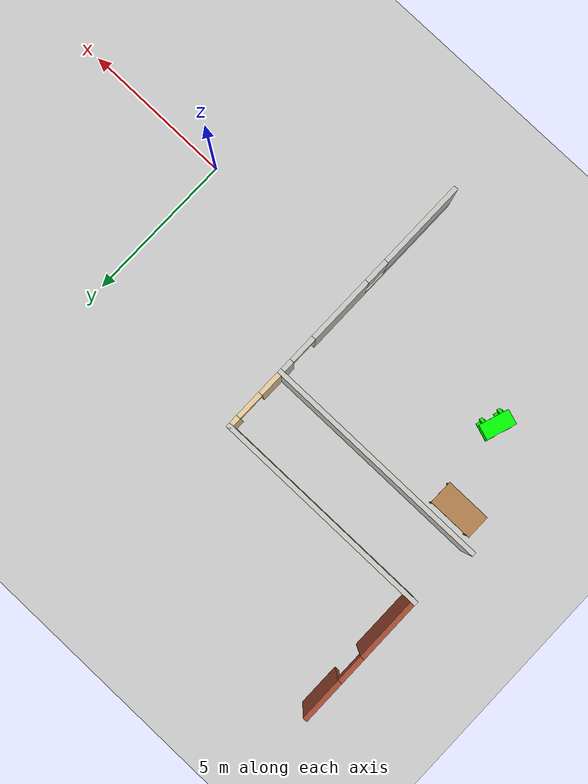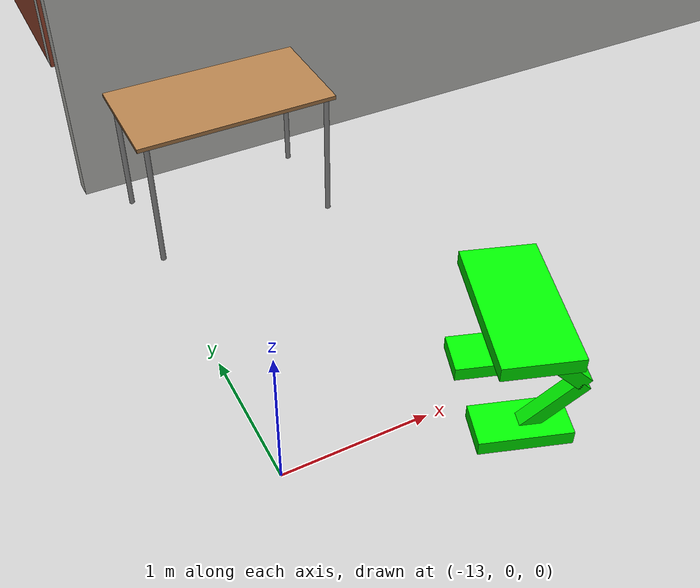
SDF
<sdf version="1.7">
 <world name="default">
  <model name="ground_plane">
   <static>1</static>
   <link name="link">
    <collision name="collision">
     <geometry><plane><normal>0 0 1</normal><size>100 100</size></plane></geometry>
     <surface>
      <contact><collide_bitmask>65535</collide_bitmask></contact>
      <friction><ode><mu>100</mu><mu2>50</mu2></ode></friction>
     </surface>
    </collision>
    <visual name="visual">
     <cast_shadows>0</cast_shadows>
     <geometry><plane><normal>0 0 1</normal><size>100 100</size></plane></geometry>
     <material>
      <script><uri>file://media/materials/scripts/gazebo.material</uri><name>Gazebo/Grey</name></script>
     </material>
    </visual>
   </link>
  </model>
  <model name="newworld">
   <link name="Wall_43">
    <pose>-9.72463 2.36822 0 0 -0 0</pose>
    <visual name="Wall_43_Visual">
     <pose>0 0 1.25 0 -0 0</pose>
     <geometry><box><size>7.5 0.15 2.5</size></box></geometry>
     <material>
      <script><uri>file://media/materials/scripts/gazebo.material</uri><name>Gazebo/CeilingTiled</name></script>
      <ambient>0.996078 0.47451 0.0196078 1</ambient>
      <shader type="pixel"/>
     </material>
     <meta><layer>0</layer></meta>
    </visual>
    <collision name="Wall_43_Collision">
     <pose>0 0 1.25 0 -0 0</pose>
     <geometry><box><size>7.5 0.15 2.5</size></box></geometry>
     <surface>
      <friction>
       <ode><mu>1</mu><mu2>1</mu2><fdir1>0 0 0</fdir1><slip1>0</slip1><slip2>0</slip2></ode>
       <torsional>
        <coefficient>1</coefficient>
        <patch_radius>0</patch_radius>
        <surface_radius>0</surface_radius>
        <use_patch_radius>1</use_patch_radius>
        <ode><slip>0</slip></ode>
       </torsional>
      </friction>
      <bounce><restitution_coefficient>0</restitution_coefficient><threshold>1e+06</threshold></bounce>
      <contact>
       <collide_without_contact>0</collide_without_contact>
       <collide_without_contact_bitmask>1</collide_without_contact_bitmask>
       <collide_bitmask>1</collide_bitmask>
       <ode>
        <soft_cfm>0</soft_cfm>
        <soft_erp>0.2</soft_erp>
        <kp>1e+13</kp>
        <kd>1</kd>
        <max_vel>0.01</max_vel>
        <min_depth>0</min_depth>
       </ode>
       <bullet>
        <split_impulse>1</split_impulse>
        <split_impulse_penetration_threshold>-0.01</split_impulse_penetration_threshold>
        <soft_cfm>0</soft_cfm>
        <soft_erp>0.2</soft_erp>
        <kp>1e+13</kp>
        <kd>1</kd>
       </bullet>
      </contact>
     </surface>
    </collision>
   </link>
   <link name="Wall_44">
    <pose>-6.04963 3.41822 0 0 -0 1.5708</pose>
    <visual name="Wall_44_Visual_0">
     <pose>-0.670296 0 1.25 0 -0 0</pose>
     <geometry><box><size>0.909407 0.15 2.5</size></box></geometry>
     <material>
      <script><uri>file://media/materials/scripts/gazebo.material</uri><name>Gazebo/Grey</name></script>
      <ambient>0.921569 0.807843 0.615686 1</ambient>
      <shader type="pixel"/>
     </material>
     <meta><layer>0</layer></meta>
    </visual>
    <visual name="Wall_44_Visual_1">
     <pose>0.904704 0 1.25 0 -0 0</pose>
     <geometry><box><size>0.440593 0.15 2.5</size></box></geometry>
     <material>
      <script><uri>file://media/materials/scripts/gazebo.material</uri><name>Gazebo/Grey</name></script>
      <ambient>0.921569 0.807843 0.615686 1</ambient>
      <shader type="pixel"/>
     </material>
     <meta><layer>0</layer></meta>
    </visual>
    <visual name="Wall_44_Visual_2">
     <pose>0.234407 0 2.25 0 -0 0</pose>
     <geometry><box><size>0.9 0.15 0.5</size></box></geometry>
     <material>
      <script><uri>file://media/materials/scripts/gazebo.material</uri><name>Gazebo/Grey</name></script>
      <ambient>0.921569 0.807843 0.615686 1</ambient>
      <shader type="pixel"/>
     </material>
     <meta><layer>0</layer></meta>
    </visual>
    <collision name="Wall_44_Collision_0">
     <pose>-0.670296 0 1.25 0 -0 0</pose>
     <geometry><box><size>0.909407 0.15 2.5</size></box></geometry>
     <surface>
      <friction>
       <ode><mu>1</mu><mu2>1</mu2><fdir1>0 0 0</fdir1><slip1>0</slip1><slip2>0</slip2></ode>
       <torsional>
        <coefficient>1</coefficient>
        <patch_radius>0</patch_radius>
        <surface_radius>0</surface_radius>
        <use_patch_radius>1</use_patch_radius>
        <ode><slip>0</slip></ode>
       </torsional>
      </friction>
      <bounce><restitution_coefficient>0</restitution_coefficient><threshold>1e+06</threshold></bounce>
      <contact>
       <collide_without_contact>0</collide_without_contact>
       <collide_without_contact_bitmask>1</collide_without_contact_bitmask>
       <collide_bitmask>1</collide_bitmask>
       <ode>
        <soft_cfm>0</soft_cfm>
        <soft_erp>0.2</soft_erp>
        <kp>1e+13</kp>
        <kd>1</kd>
        <max_vel>0.01</max_vel>
        <min_depth>0</min_depth>
       </ode>
       <bullet>
        <split_impulse>1</split_impulse>
        <split_impulse_penetration_threshold>-0.01</split_impulse_penetration_threshold>
        <soft_cfm>0</soft_cfm>
        <soft_erp>0.2</soft_erp>
        <kp>1e+13</kp>
        <kd>1</kd>
       </bullet>
      </contact>
     </surface>
    </collision>
    <collision name="Wall_44_Collision_2">
     <pose>0.234407 0 2.25 0 -0 0</pose>
     <geometry><box><size>0.9 0.15 0.5</size></box></geometry>
     <surface>
      <friction>
       <ode><mu>1</mu><mu2>1</mu2><fdir1>0 0 0</fdir1><slip1>0</slip1><slip2>0</slip2></ode>
       <torsional>
        <coefficient>1</coefficient>
        <patch_radius>0</patch_radius>
        <surface_radius>0</surface_radius>
        <use_patch_radius>1</use_patch_radius>
        <ode><slip>0</slip></ode>
       </torsional>
      </friction>
      <bounce><restitution_coefficient>0</restitution_coefficient><threshold>1e+06</threshold></bounce>
      <contact>
       <collide_without_contact>0</collide_without_contact>
       <collide_without_contact_bitmask>1</collide_without_contact_bitmask>
       <collide_bitmask>1</collide_bitmask>
       <ode>
        <soft_cfm>0</soft_cfm>
        <soft_erp>0.2</soft_erp>
        <kp>1e+13</kp>
        <kd>1</kd>
        <max_vel>0.01</max_vel>
        <min_depth>0</min_depth>
       </ode>
       <bullet>
        <split_impulse>1</split_impulse>
        <split_impulse_penetration_threshold>-0.01</split_impulse_penetration_threshold>
        <soft_cfm>0</soft_cfm>
        <soft_erp>0.2</soft_erp>
        <kp>1e+13</kp>
        <kd>1</kd>
       </bullet>
      </contact>
     </surface>
    </collision>
    <collision name="Wall_44_Collision_1">
     <pose>0.904704 0 1.25 0 -0 0</pose>
     <geometry><box><size>0.440593 0.15 2.5</size></box></geometry>
     <surface>
      <friction>
       <ode><mu>1</mu><mu2>1</mu2><fdir1>0 0 0</fdir1><slip1>0</slip1><slip2>0</slip2></ode>
       <torsional>
        <coefficient>1</coefficient>
        <patch_radius>0</patch_radius>
        <surface_radius>0</surface_radius>
        <use_patch_radius>1</use_patch_radius>
        <ode><slip>0</slip></ode>
       </torsional>
      </friction>
      <bounce><restitution_coefficient>0</restitution_coefficient><threshold>1e+06</threshold></bounce>
      <contact>
       <collide_without_contact>0</collide_without_contact>
       <collide_without_contact_bitmask>1</collide_without_contact_bitmask>
       <collide_bitmask>1</collide_bitmask>
       <ode>
        <soft_cfm>0</soft_cfm>
        <soft_erp>0.2</soft_erp>
        <kp>1e+13</kp>
        <kd>1</kd>
        <max_vel>0.01</max_vel>
        <min_depth>0</min_depth>
       </ode>
       <bullet>
        <split_impulse>1</split_impulse>
        <split_impulse_penetration_threshold>-0.01</split_impulse_penetration_threshold>
        <soft_cfm>0</soft_cfm>
        <soft_erp>0.2</soft_erp>
        <kp>1e+13</kp>
        <kd>1</kd>
       </bullet>
      </contact>
     </surface>
    </collision>
   </link>
   <link name="Wall_45">
    <pose>-9.59963 4.46822 0 0 -0 3.14159</pose>
    <visual name="Wall_45_Visual">
     <pose>0 0 1.25 0 -0 0</pose>
     <geometry><box><size>7.25 0.15 2.5</size></box></geometry>
     <material>
      <script><uri>file://media/materials/scripts/gazebo.material</uri><name>Gazebo/CeilingTiled</name></script>
      <ambient>0.921569 0.807843 0.615686 1</ambient>
      <shader type="pixel"/>
     </material>
     <meta><layer>0</layer></meta>
    </visual>
    <collision name="Wall_45_Collision">
     <pose>0 0 1.25 0 -0 0</pose>
     <geometry><box><size>7.25 0.15 2.5</size></box></geometry>
     <surface>
      <friction>
       <ode><mu>1</mu><mu2>1</mu2><fdir1>0 0 0</fdir1><slip1>0</slip1><slip2>0</slip2></ode>
       <torsional>
        <coefficient>1</coefficient>
        <patch_radius>0</patch_radius>
        <surface_radius>0</surface_radius>
        <use_patch_radius>1</use_patch_radius>
        <ode><slip>0</slip></ode>
       </torsional>
      </friction>
      <bounce><restitution_coefficient>0</restitution_coefficient><threshold>1e+06</threshold></bounce>
      <contact>
       <collide_without_contact>0</collide_without_contact>
       <collide_without_contact_bitmask>1</collide_without_contact_bitmask>
       <collide_bitmask>1</collide_bitmask>
       <ode>
        <soft_cfm>0</soft_cfm>
        <soft_erp>0.2</soft_erp>
        <kp>1e+13</kp>
        <kd>1</kd>
        <max_vel>0.01</max_vel>
        <min_depth>0</min_depth>
       </ode>
       <bullet>
        <split_impulse>1</split_impulse>
        <split_impulse_penetration_threshold>-0.01</split_impulse_penetration_threshold>
        <soft_cfm>0</soft_cfm>
        <soft_erp>0.2</soft_erp>
        <kp>1e+13</kp>
        <kd>1</kd>
       </bullet>
      </contact>
     </surface>
    </collision>
   </link>
   <link name="Wall_46">
    <pose>-13.1496 6.64322 0 0 -0 1.5708</pose>
    <visual name="Wall_46_Visual_1">
     <pose>1.54605 0 1.25 0 -0 0</pose>
     <geometry><box><size>1.4079 0.15 2.5</size></box></geometry>
     <material>
      <script><uri>file://media/materials/scripts/gazebo.material</uri><name>Gazebo/Bricks</name></script>
      <ambient>1 1 1 1</ambient>
      <shader type="pixel"/>
     </material>
     <meta><layer>0</layer></meta>
    </visual>
    <visual name="Wall_46_Visual_0">
     <pose>-1.15395 0 1.25 0 -0 0</pose>
     <geometry><box><size>2.1921 0.15 2.5</size></box></geometry>
     <material>
      <script><uri>file://media/materials/scripts/gazebo.material</uri><name>Gazebo/Bricks</name></script>
      <ambient>1 1 1 1</ambient>
      <shader type="pixel"/>
     </material>
     <meta><layer>0</layer></meta>
    </visual>
    <visual name="Wall_46_Visual_2">
     <pose>0.392097 0 2.25 0 -0 0</pose>
     <geometry><box><size>0.9 0.15 0.5</size></box></geometry>
     <material>
      <script><uri>file://media/materials/scripts/gazebo.material</uri><name>Gazebo/Bricks</name></script>
      <ambient>1 1 1 1</ambient>
      <shader type="pixel"/>
     </material>
     <meta><layer>0</layer></meta>
    </visual>
    <collision name="Wall_46_Collision_2">
     <pose>0.392097 0 2.25 0 -0 0</pose>
     <geometry><box><size>0.9 0.15 0.5</size></box></geometry>
     <surface>
      <friction>
       <ode><mu>1</mu><mu2>1</mu2><fdir1>0 0 0</fdir1><slip1>0</slip1><slip2>0</slip2></ode>
       <torsional>
        <coefficient>1</coefficient>
        <patch_radius>0</patch_radius>
        <surface_radius>0</surface_radius>
        <use_patch_radius>1</use_patch_radius>
        <ode><slip>0</slip></ode>
       </torsional>
      </friction>
      <bounce><restitution_coefficient>0</restitution_coefficient><threshold>1e+06</threshold></bounce>
      <contact>
       <collide_without_contact>0</collide_without_contact>
       <collide_without_contact_bitmask>1</collide_without_contact_bitmask>
       <collide_bitmask>1</collide_bitmask>
       <ode>
        <soft_cfm>0</soft_cfm>
        <soft_erp>0.2</soft_erp>
        <kp>1e+13</kp>
        <kd>1</kd>
        <max_vel>0.01</max_vel>
        <min_depth>0</min_depth>
       </ode>
       <bullet>
        <split_impulse>1</split_impulse>
        <split_impulse_penetration_threshold>-0.01</split_impulse_penetration_threshold>
        <soft_cfm>0</soft_cfm>
        <soft_erp>0.2</soft_erp>
        <kp>1e+13</kp>
        <kd>1</kd>
       </bullet>
      </contact>
     </surface>
    </collision>
    <collision name="Wall_46_Collision_0">
     <pose>-1.15395 0 1.25 0 -0 0</pose>
     <geometry><box><size>2.1921 0.15 2.5</size></box></geometry>
     <surface>
      <friction>
       <ode><mu>1</mu><mu2>1</mu2><fdir1>0 0 0</fdir1><slip1>0</slip1><slip2>0</slip2></ode>
       <torsional>
        <coefficient>1</coefficient>
        <patch_radius>0</patch_radius>
        <surface_radius>0</surface_radius>
        <use_patch_radius>1</use_patch_radius>
        <ode><slip>0</slip></ode>
       </torsional>
      </friction>
      <bounce><restitution_coefficient>0</restitution_coefficient><threshold>1e+06</threshold></bounce>
      <contact>
       <collide_without_contact>0</collide_without_contact>
       <collide_without_contact_bitmask>1</collide_without_contact_bitmask>
       <collide_bitmask>1</collide_bitmask>
       <ode>
        <soft_cfm>0</soft_cfm>
        <soft_erp>0.2</soft_erp>
        <kp>1e+13</kp>
        <kd>1</kd>
        <max_vel>0.01</max_vel>
        <min_depth>0</min_depth>
       </ode>
       <bullet>
        <split_impulse>1</split_impulse>
        <split_impulse_penetration_threshold>-0.01</split_impulse_penetration_threshold>
        <soft_cfm>0</soft_cfm>
        <soft_erp>0.2</soft_erp>
        <kp>1e+13</kp>
        <kd>1</kd>
       </bullet>
      </contact>
     </surface>
    </collision>
    <collision name="Wall_46_Collision_1">
     <pose>1.54605 0 1.25 0 -0 0</pose>
     <geometry><box><size>1.4079 0.15 2.5</size></box></geometry>
     <surface>
      <friction>
       <ode><mu>1</mu><mu2>1</mu2><fdir1>0 0 0</fdir1><slip1>0</slip1><slip2>0</slip2></ode>
       <torsional>
        <coefficient>1</coefficient>
        <patch_radius>0</patch_radius>
        <surface_radius>0</surface_radius>
        <use_patch_radius>1</use_patch_radius>
        <ode><slip>0</slip></ode>
       </torsional>
      </friction>
      <bounce><restitution_coefficient>0</restitution_coefficient><threshold>1e+06</threshold></bounce>
      <contact>
       <collide_without_contact>0</collide_without_contact>
       <collide_without_contact_bitmask>1</collide_without_contact_bitmask>
       <collide_bitmask>1</collide_bitmask>
       <ode>
        <soft_cfm>0</soft_cfm>
        <soft_erp>0.2</soft_erp>
        <kp>1e+13</kp>
        <kd>1</kd>
        <max_vel>0.01</max_vel>
        <min_depth>0</min_depth>
       </ode>
       <bullet>
        <split_impulse>1</split_impulse>
        <split_impulse_penetration_threshold>-0.01</split_impulse_penetration_threshold>
        <soft_cfm>0</soft_cfm>
        <soft_erp>0.2</soft_erp>
        <kp>1e+13</kp>
        <kd>1</kd>
       </bullet>
      </contact>
     </surface>
    </collision>
   </link>
   <link name="Wall_54">
    <pose>-6.04963 -1.22778 0 0 0 -1.5708</pose>
    <visual name="Wall_54_Visual_5">
     <pose>-2.69956 0 2.25 0 -0 0</pose>
     <geometry><box><size>0.9 0.15 0.5</size></box></geometry>
     <material>
      <script><uri>file://media/materials/scripts/gazebo.material</uri><name>Gazebo/CeilingTiled</name></script>
      <ambient>0.996078 0.47451 0.0196078 1</ambient>
      <shader type="pixel"/>
     </material>
     <meta><layer>0</layer></meta>
    </visual>
    <visual name="Wall_54_Visual_4">
     <pose>0.356693 0 1.9 0 -0 0</pose>
     <geometry><box><size>0.8 0.15 1.2</size></box></geometry>
     <material>
      <script><uri>file://media/materials/scripts/gazebo.material</uri><name>Gazebo/CeilingTiled</name></script>
      <ambient>0.996078 0.47451 0.0196078 1</ambient>
      <shader type="pixel"/>
     </material>
     <meta><layer>0</layer></meta>
    </visual>
    <visual name="Wall_54_Visual_0">
     <pose>-3.41028 0 1.25 0 -0 0</pose>
     <geometry><box><size>0.521445 0.15 2.5</size></box></geometry>
     <material>
      <script><uri>file://media/materials/scripts/gazebo.material</uri><name>Gazebo/CeilingTiled</name></script>
      <ambient>0.996078 0.47451 0.0196078 1</ambient>
      <shader type="pixel"/>
     </material>
     <meta><layer>0</layer></meta>
    </visual>
    <visual name="Wall_54_Visual_3">
     <pose>2.21385 0 1.5 0 -0 0</pose>
     <geometry><box><size>2.91431 0.15 2</size></box></geometry>
     <material>
      <script><uri>file://media/materials/scripts/gazebo.material</uri><name>Gazebo/CeilingTiled</name></script>
      <ambient>0.996078 0.47451 0.0196078 1</ambient>
      <shader type="pixel"/>
     </material>
     <meta><layer>0</layer></meta>
    </visual>
    <visual name="Wall_54_Visual_1">
     <pose>-1.14643 0 1.25 0 -0 0</pose>
     <geometry><box><size>2.20625 0.15 2.5</size></box></geometry>
     <material>
      <script><uri>file://media/materials/scripts/gazebo.material</uri><name>Gazebo/CeilingTiled</name></script>
      <ambient>0.996078 0.47451 0.0196078 1</ambient>
      <shader type="pixel"/>
     </material>
     <meta><layer>0</layer></meta>
    </visual>
    <visual name="Wall_54_Visual_2">
     <pose>1.81385 0 0.25 0 -0 0</pose>
     <geometry><box><size>3.71431 0.15 0.5</size></box></geometry>
     <material>
      <script><uri>file://media/materials/scripts/gazebo.material</uri><name>Gazebo/CeilingTiled</name></script>
      <ambient>0.996078 0.47451 0.0196078 1</ambient>
      <shader type="pixel"/>
     </material>
     <meta><layer>0</layer></meta>
    </visual>
    <collision name="Wall_54_Collision_3">
     <pose>2.21385 0 1.5 0 -0 0</pose>
     <geometry><box><size>2.91431 0.15 2</size></box></geometry>
     <surface>
      <friction>
       <ode><mu>1</mu><mu2>1</mu2><fdir1>0 0 0</fdir1><slip1>0</slip1><slip2>0</slip2></ode>
       <torsional>
        <coefficient>1</coefficient>
        <patch_radius>0</patch_radius>
        <surface_radius>0</surface_radius>
        <use_patch_radius>1</use_patch_radius>
        <ode><slip>0</slip></ode>
       </torsional>
      </friction>
      <bounce><restitution_coefficient>0</restitution_coefficient><threshold>1e+06</threshold></bounce>
      <contact>
       <collide_without_contact>0</collide_without_contact>
       <collide_without_contact_bitmask>1</collide_without_contact_bitmask>
       <collide_bitmask>1</collide_bitmask>
       <ode>
        <soft_cfm>0</soft_cfm>
        <soft_erp>0.2</soft_erp>
        <kp>1e+13</kp>
        <kd>1</kd>
        <max_vel>0.01</max_vel>
        <min_depth>0</min_depth>
       </ode>
       <bullet>
        <split_impulse>1</split_impulse>
        <split_impulse_penetration_threshold>-0.01</split_impulse_penetration_threshold>
        <soft_cfm>0</soft_cfm>
        <soft_erp>0.2</soft_erp>
        <kp>1e+13</kp>
        <kd>1</kd>
       </bullet>
      </contact>
     </surface>
    </collision>
    <collision name="Wall_54_Collision_5">
     <pose>-2.69956 0 2.25 0 -0 0</pose>
     <geometry><box><size>0.9 0.15 0.5</size></box></geometry>
     <surface>
      <friction>
       <ode><mu>1</mu><mu2>1</mu2><fdir1>0 0 0</fdir1><slip1>0</slip1><slip2>0</slip2></ode>
       <torsional>
        <coefficient>1</coefficient>
        <patch_radius>0</patch_radius>
        <surface_radius>0</surface_radius>
        <use_patch_radius>1</use_patch_radius>
        <ode><slip>0</slip></ode>
       </torsional>
      </friction>
      <bounce><restitution_coefficient>0</restitution_coefficient><threshold>1e+06</threshold></bounce>
      <contact>
       <collide_without_contact>0</collide_without_contact>
       <collide_without_contact_bitmask>1</collide_without_contact_bitmask>
       <collide_bitmask>1</collide_bitmask>
       <ode>
        <soft_cfm>0</soft_cfm>
        <soft_erp>0.2</soft_erp>
        <kp>1e+13</kp>
        <kd>1</kd>
        <max_vel>0.01</max_vel>
        <min_depth>0</min_depth>
       </ode>
       <bullet>
        <split_impulse>1</split_impulse>
        <split_impulse_penetration_threshold>-0.01</split_impulse_penetration_threshold>
        <soft_cfm>0</soft_cfm>
        <soft_erp>0.2</soft_erp>
        <kp>1e+13</kp>
        <kd>1</kd>
       </bullet>
      </contact>
     </surface>
    </collision>
    <collision name="Wall_54_Collision_2">
     <pose>1.81385 0 0.25 0 -0 0</pose>
     <geometry><box><size>3.71431 0.15 0.5</size></box></geometry>
     <surface>
      <friction>
       <ode><mu>1</mu><mu2>1</mu2><fdir1>0 0 0</fdir1><slip1>0</slip1><slip2>0</slip2></ode>
       <torsional>
        <coefficient>1</coefficient>
        <patch_radius>0</patch_radius>
        <surface_radius>0</surface_radius>
        <use_patch_radius>1</use_patch_radius>
        <ode><slip>0</slip></ode>
       </torsional>
      </friction>
      <bounce><restitution_coefficient>0</restitution_coefficient><threshold>1e+06</threshold></bounce>
      <contact>
       <collide_without_contact>0</collide_without_contact>
       <collide_without_contact_bitmask>1</collide_without_contact_bitmask>
       <collide_bitmask>1</collide_bitmask>
       <ode>
        <soft_cfm>0</soft_cfm>
        <soft_erp>0.2</soft_erp>
        <kp>1e+13</kp>
        <kd>1</kd>
        <max_vel>0.01</max_vel>
        <min_depth>0</min_depth>
       </ode>
       <bullet>
        <split_impulse>1</split_impulse>
        <split_impulse_penetration_threshold>-0.01</split_impulse_penetration_threshold>
        <soft_cfm>0</soft_cfm>
        <soft_erp>0.2</soft_erp>
        <kp>1e+13</kp>
        <kd>1</kd>
       </bullet>
      </contact>
     </surface>
    </collision>
    <collision name="Wall_54_Collision_4">
     <pose>0.356693 0 1.9 0 -0 0</pose>
     <geometry><box><size>0.8 0.15 1.2</size></box></geometry>
     <surface>
      <friction>
       <ode><mu>1</mu><mu2>1</mu2><fdir1>0 0 0</fdir1><slip1>0</slip1><slip2>0</slip2></ode>
       <torsional>
        <coefficient>1</coefficient>
        <patch_radius>0</patch_radius>
        <surface_radius>0</surface_radius>
        <use_patch_radius>1</use_patch_radius>
        <ode><slip>0</slip></ode>
       </torsional>
      </friction>
      <bounce><restitution_coefficient>0</restitution_coefficient><threshold>1e+06</threshold></bounce>
      <contact>
       <collide_without_contact>0</collide_without_contact>
       <collide_without_contact_bitmask>1</collide_without_contact_bitmask>
       <collide_bitmask>1</collide_bitmask>
       <ode>
        <soft_cfm>0</soft_cfm>
        <soft_erp>0.2</soft_erp>
        <kp>1e+13</kp>
        <kd>1</kd>
        <max_vel>0.01</max_vel>
        <min_depth>0</min_depth>
       </ode>
       <bullet>
        <split_impulse>1</split_impulse>
        <split_impulse_penetration_threshold>-0.01</split_impulse_penetration_threshold>
        <soft_cfm>0</soft_cfm>
        <soft_erp>0.2</soft_erp>
        <kp>1e+13</kp>
        <kd>1</kd>
       </bullet>
      </contact>
     </surface>
    </collision>
    <collision name="Wall_54_Collision_1">
     <pose>-1.14643 0 1.25 0 -0 0</pose>
     <geometry><box><size>2.20625 0.15 2.5</size></box></geometry>
     <surface>
      <friction>
       <ode><mu>1</mu><mu2>1</mu2><fdir1>0 0 0</fdir1><slip1>0</slip1><slip2>0</slip2></ode>
       <torsional>
        <coefficient>1</coefficient>
        <patch_radius>0</patch_radius>
        <surface_radius>0</surface_radius>
        <use_patch_radius>1</use_patch_radius>
        <ode><slip>0</slip></ode>
       </torsional>
      </friction>
      <bounce><restitution_coefficient>0</restitution_coefficient><threshold>1e+06</threshold></bounce>
      <contact>
       <collide_without_contact>0</collide_without_contact>
       <collide_without_contact_bitmask>1</collide_without_contact_bitmask>
       <collide_bitmask>1</collide_bitmask>
       <ode>
        <soft_cfm>0</soft_cfm>
        <soft_erp>0.2</soft_erp>
        <kp>1e+13</kp>
        <kd>1</kd>
        <max_vel>0.01</max_vel>
        <min_depth>0</min_depth>
       </ode>
       <bullet>
        <split_impulse>1</split_impulse>
        <split_impulse_penetration_threshold>-0.01</split_impulse_penetration_threshold>
        <soft_cfm>0</soft_cfm>
        <soft_erp>0.2</soft_erp>
        <kp>1e+13</kp>
        <kd>1</kd>
       </bullet>
      </contact>
     </surface>
    </collision>
    <collision name="Wall_54_Collision_0">
     <pose>-3.41028 0 1.25 0 -0 0</pose>
     <geometry><box><size>0.521445 0.15 2.5</size></box></geometry>
     <surface>
      <friction>
       <ode><mu>1</mu><mu2>1</mu2><fdir1>0 0 0</fdir1><slip1>0</slip1><slip2>0</slip2></ode>
       <torsional>
        <coefficient>1</coefficient>
        <patch_radius>0</patch_radius>
        <surface_radius>0</surface_radius>
        <use_patch_radius>1</use_patch_radius>
        <ode><slip>0</slip></ode>
       </torsional>
      </friction>
      <bounce><restitution_coefficient>0</restitution_coefficient><threshold>1e+06</threshold></bounce>
      <contact>
       <collide_without_contact>0</collide_without_contact>
       <collide_without_contact_bitmask>1</collide_without_contact_bitmask>
       <collide_bitmask>1</collide_bitmask>
       <ode>
        <soft_cfm>0</soft_cfm>
        <soft_erp>0.2</soft_erp>
        <kp>1e+13</kp>
        <kd>1</kd>
        <max_vel>0.01</max_vel>
        <min_depth>0</min_depth>
       </ode>
       <bullet>
        <split_impulse>1</split_impulse>
        <split_impulse_penetration_threshold>-0.01</split_impulse_penetration_threshold>
        <soft_cfm>0</soft_cfm>
        <soft_erp>0.2</soft_erp>
        <kp>1e+13</kp>
        <kd>1</kd>
       </bullet>
      </contact>
     </surface>
    </collision>
   </link>
   <static>1</static>
   <pose>0.193711 0.903984 0 0 -0 0</pose>
  </model>
  <model name="table">
   <static>1</static>
   <link name="link">
    <collision name="surface">
     <pose>0 0 1 0 -0 0</pose>
     <geometry><box><size>1.5 0.8 0.03</size></box></geometry>
     <surface><friction><ode><mu>0.6</mu><mu2>0.6</mu2></ode></friction></surface>
    </collision>
    <visual name="visual1">
     <pose>0 0 1 0 -0 0</pose>
     <geometry><box><size>1.5 0.8 0.03</size></box></geometry>
     <material>
      <script><uri>file://media/materials/scripts/gazebo.material</uri><name>Gazebo/Wood</name></script>
     </material>
    </visual>
    <collision name="front_left_leg">
     <pose>0.68 0.38 0.5 0 -0 0</pose>
     <geometry><cylinder><radius>0.02</radius><length>1</length></cylinder></geometry>
    </collision>
    <visual name="front_left_leg">
     <pose>0.68 0.38 0.5 0 -0 0</pose>
     <geometry><cylinder><radius>0.02</radius><length>1</length></cylinder></geometry>
     <material>
      <script><uri>file://media/materials/scripts/gazebo.material</uri><name>Gazebo/Grey</name></script>
     </material>
    </visual>
    <collision name="front_right_leg">
     <pose>0.68 -0.38 0.5 0 -0 0</pose>
     <geometry><cylinder><radius>0.02</radius><length>1</length></cylinder></geometry>
    </collision>
    <visual name="front_right_leg">
     <pose>0.68 -0.38 0.5 0 -0 0</pose>
     <geometry><cylinder><radius>0.02</radius><length>1</length></cylinder></geometry>
     <material>
      <script><uri>file://media/materials/scripts/gazebo.material</uri><name>Gazebo/Grey</name></script>
     </material>
    </visual>
    <collision name="back_right_leg">
     <pose>-0.68 -0.38 0.5 0 -0 0</pose>
     <geometry><cylinder><radius>0.02</radius><length>1</length></cylinder></geometry>
    </collision>
    <visual name="back_right_leg">
     <pose>-0.68 -0.38 0.5 0 -0 0</pose>
     <geometry><cylinder><radius>0.02</radius><length>1</length></cylinder></geometry>
     <material>
      <script><uri>file://media/materials/scripts/gazebo.material</uri><name>Gazebo/Grey</name></script>
     </material>
    </visual>
    <collision name="back_left_leg">
     <pose>-0.68 0.38 0.5 0 -0 0</pose>
     <geometry><cylinder><radius>0.02</radius><length>1</length></cylinder></geometry>
    </collision>
    <visual name="back_left_leg">
     <pose>-0.68 0.38 0.5 0 -0 0</pose>
     <geometry><cylinder><radius>0.02</radius><length>1</length></cylinder></geometry>
     <material>
      <script><uri>file://media/materials/scripts/gazebo.material</uri><name>Gazebo/Grey</name></script>
     </material>
    </visual>
   </link>
   <pose>-12.3022 2.55023 0 0 -0 0</pose>
  </model>
  <model name="HumanoidRobot">
   <model name="HumanoidRobot">
    <link name="link_0">
     <pose>-0.012657 0.075 0.964637 0 -0 0</pose>
     <inertial>
      <mass>1</mass>
      <inertia>
       <ixx>0.166667</ixx>
       <ixy>0</ixy>
       <ixz>0</ixz>
       <iyy>0.166667</iyy>
       <iyz>0</iyz>
       <izz>0.166667</izz>
      </inertia>
     </inertial>
     <visual name="visual">
      <geometry><box><size>0.5 1 0.1</size></box></geometry>
      <material>
       <lighting>1</lighting>
       <script><uri>file://media/materials/scripts/gazebo.material</uri><name>Gazebo/Grey</name></script>
       <shader type="pixel"><normal_map>__default__</normal_map></shader>
       <ambient>0 1 0 1</ambient>
       <diffuse>0.1 0.1 0.1 1</diffuse>
       <specular>0 0 0 1</specular>
       <emissive>0 0 0 1</emissive>
      </material>
     </visual>
     <collision name="collision">
      <geometry><box><size>0.5 1 0.1</size></box></geometry>
      <surface>
       <friction>
        <ode><mu>1</mu><mu2>1</mu2><fdir1>0 0 0</fdir1><slip1>0</slip1><slip2>0</slip2></ode>
        <torsional>
         <coefficient>1</coefficient>
         <patch_radius>0</patch_radius>
         <surface_radius>0</surface_radius>
         <use_patch_radius>1</use_patch_radius>
         <ode><slip>0</slip></ode>
        </torsional>
       </friction>
       <bounce><restitution_coefficient>0</restitution_coefficient><threshold>1e+06</threshold></bounce>
       <contact>
        <collide_without_contact>0</collide_without_contact>
        <collide_without_contact_bitmask>1</collide_without_contact_bitmask>
        <collide_bitmask>1</collide_bitmask>
        <ode>
         <soft_cfm>0</soft_cfm>
         <soft_erp>0.2</soft_erp>
         <kp>1e+13</kp>
         <kd>1</kd>
         <max_vel>0.01</max_vel>
         <min_depth>0</min_depth>
        </ode>
        <bullet>
         <split_impulse>1</split_impulse>
         <split_impulse_penetration_threshold>-0.01</split_impulse_penetration_threshold>
         <soft_cfm>0</soft_cfm>
         <soft_erp>0.2</soft_erp>
         <kp>1e+13</kp>
         <kd>1</kd>
        </bullet>
       </contact>
      </surface>
     </collision>
    </link>
    <link name="link_2">
     <pose>-0.012657 0.375 0.964637 0 -0.785 0</pose>
     <inertial>
      <mass>1</mass>
      <inertia>
       <ixx>0.166667</ixx>
       <ixy>0</ixy>
       <ixz>0</ixz>
       <iyy>0.166667</iyy>
       <iyz>0</iyz>
       <izz>0.166667</izz>
      </inertia>
     </inertial>
     <visual name="visual">
      <pose>0 0 -0.25 0 -0 0</pose>
      <geometry><box><size>0.1 0.1 0.5</size></box></geometry>
      <material>
       <lighting>1</lighting>
       <script><uri>file://media/materials/scripts/gazebo.material</uri><name>Gazebo/Grey</name></script>
       <shader type="pixel"><normal_map>__default__</normal_map></shader>
       <ambient>0 1 0 1</ambient>
       <diffuse>0.1 0.1 0.1 1</diffuse>
       <specular>0 0 0 1</specular>
       <emissive>0 0 0 1</emissive>
      </material>
     </visual>
     <collision name="collision">
      <pose>0 0 -0.25 0 -0 0</pose>
      <geometry><box><size>0.1 0.1 0.5</size></box></geometry>
      <surface>
       <friction>
        <ode><mu>1</mu><mu2>1</mu2><fdir1>0 0 0</fdir1><slip1>0</slip1><slip2>0</slip2></ode>
        <torsional>
         <coefficient>1</coefficient>
         <patch_radius>0</patch_radius>
         <surface_radius>0</surface_radius>
         <use_patch_radius>1</use_patch_radius>
         <ode><slip>0</slip></ode>
        </torsional>
       </friction>
       <bounce><restitution_coefficient>0</restitution_coefficient><threshold>1e+06</threshold></bounce>
       <contact>
        <collide_without_contact>0</collide_without_contact>
        <collide_without_contact_bitmask>1</collide_without_contact_bitmask>
        <collide_bitmask>1</collide_bitmask>
        <ode>
         <soft_cfm>0</soft_cfm>
         <soft_erp>0.2</soft_erp>
         <kp>1e+13</kp>
         <kd>1</kd>
         <max_vel>0.01</max_vel>
         <min_depth>0</min_depth>
        </ode>
        <bullet>
         <split_impulse>1</split_impulse>
         <split_impulse_penetration_threshold>-0.01</split_impulse_penetration_threshold>
         <soft_cfm>0</soft_cfm>
         <soft_erp>0.2</soft_erp>
         <kp>1e+13</kp>
         <kd>1</kd>
        </bullet>
       </contact>
      </surface>
     </collision>
    </link>
    <link name="link_2_clone">
     <pose>0.340755 0.375 0.610943 0 0.7857 0</pose>
     <inertial>
      <mass>1</mass>
      <inertia>
       <ixx>0.166667</ixx>
       <ixy>0</ixy>
       <ixz>0</ixz>
       <iyy>0.166667</iyy>
       <iyz>0</iyz>
       <izz>0.166667</izz>
      </inertia>
     </inertial>
     <visual name="visual">
      <pose>0 0 -0.25 0 -0 0</pose>
      <geometry><box><size>0.1 0.1 0.5</size></box></geometry>
      <material>
       <lighting>1</lighting>
       <script><uri>file://media/materials/scripts/gazebo.material</uri><name>Gazebo/Grey</name></script>
       <shader type="pixel"><normal_map>__default__</normal_map></shader>
       <ambient>0 1 0 1</ambient>
       <diffuse>0.1 0.1 0.1 1</diffuse>
       <specular>0 0 0 1</specular>
       <emissive>0 0 0 1</emissive>
      </material>
     </visual>
     <collision name="collision">
      <pose>0 0 -0.25 0 -0 0</pose>
      <geometry><box><size>0.1 0.1 0.5</size></box></geometry>
      <surface>
       <friction>
        <ode><mu>1</mu><mu2>1</mu2><fdir1>0 0 0</fdir1><slip1>0</slip1><slip2>0</slip2></ode>
        <torsional>
         <coefficient>1</coefficient>
         <patch_radius>0</patch_radius>
         <surface_radius>0</surface_radius>
         <use_patch_radius>1</use_patch_radius>
         <ode><slip>0</slip></ode>
        </torsional>
       </friction>
       <bounce><restitution_coefficient>0</restitution_coefficient><threshold>1e+06</threshold></bounce>
       <contact>
        <collide_without_contact>0</collide_without_contact>
        <collide_without_contact_bitmask>1</collide_without_contact_bitmask>
        <collide_bitmask>1</collide_bitmask>
        <ode>
         <soft_cfm>0</soft_cfm>
         <soft_erp>0.2</soft_erp>
         <kp>1e+13</kp>
         <kd>1</kd>
         <max_vel>0.01</max_vel>
         <min_depth>0</min_depth>
        </ode>
        <bullet>
         <split_impulse>1</split_impulse>
         <split_impulse_penetration_threshold>-0.01</split_impulse_penetration_threshold>
         <soft_cfm>0</soft_cfm>
         <soft_erp>0.2</soft_erp>
         <kp>1e+13</kp>
         <kd>1</kd>
        </bullet>
       </contact>
      </surface>
     </collision>
    </link>
    <link name="link_2_clone_clone">
     <pose>-0.012657 -0.225 0.964637 0 -0.7857 0</pose>
     <inertial>
      <mass>1</mass>
      <inertia>
       <ixx>0.166667</ixx>
       <ixy>0</ixy>
       <ixz>0</ixz>
       <iyy>0.166667</iyy>
       <iyz>0</iyz>
       <izz>0.166667</izz>
      </inertia>
     </inertial>
     <visual name="visual">
      <pose>0 0 -0.25 0 -0 0</pose>
      <geometry><box><size>0.1 0.1 0.5</size></box></geometry>
      <material>
       <lighting>1</lighting>
       <script><uri>file://media/materials/scripts/gazebo.material</uri><name>Gazebo/Grey</name></script>
       <shader type="pixel"><normal_map>__default__</normal_map></shader>
       <ambient>0 1 0 1</ambient>
       <diffuse>0.1 0.1 0.1 1</diffuse>
       <specular>0 0 0 1</specular>
       <emissive>0 0 0 1</emissive>
      </material>
     </visual>
     <collision name="collision">
      <pose>0 0 -0.25 0 -0 0</pose>
      <geometry><box><size>0.1 0.1 0.5</size></box></geometry>
      <surface>
       <friction>
        <ode><mu>1</mu><mu2>1</mu2><fdir1>0 0 0</fdir1><slip1>0</slip1><slip2>0</slip2></ode>
        <torsional>
         <coefficient>1</coefficient>
         <patch_radius>0</patch_radius>
         <surface_radius>0</surface_radius>
         <use_patch_radius>1</use_patch_radius>
         <ode><slip>0</slip></ode>
        </torsional>
       </friction>
       <bounce><restitution_coefficient>0</restitution_coefficient><threshold>1e+06</threshold></bounce>
       <contact>
        <collide_without_contact>0</collide_without_contact>
        <collide_without_contact_bitmask>1</collide_without_contact_bitmask>
        <collide_bitmask>1</collide_bitmask>
        <ode>
         <soft_cfm>0</soft_cfm>
         <soft_erp>0.2</soft_erp>
         <kp>1e+13</kp>
         <kd>1</kd>
         <max_vel>0.01</max_vel>
         <min_depth>0</min_depth>
        </ode>
        <bullet>
         <split_impulse>1</split_impulse>
         <split_impulse_penetration_threshold>-0.01</split_impulse_penetration_threshold>
         <soft_cfm>0</soft_cfm>
         <soft_erp>0.2</soft_erp>
         <kp>1e+13</kp>
         <kd>1</kd>
        </bullet>
       </contact>
      </surface>
     </collision>
    </link>
    <link name="link_2_clone_clone_clone">
     <pose>0.341003 -0.225 0.611191 0 0.785 0</pose>
     <inertial>
      <mass>1</mass>
      <inertia>
       <ixx>0.166667</ixx>
       <ixy>0</ixy>
       <ixz>0</ixz>
       <iyy>0.166667</iyy>
       <iyz>0</iyz>
       <izz>0.166667</izz>
      </inertia>
     </inertial>
     <visual name="visual">
      <pose>0 0 -0.25 0 -0 0</pose>
      <geometry><box><size>0.1 0.1 0.5</size></box></geometry>
      <material>
       <lighting>1</lighting>
       <script><uri>file://media/materials/scripts/gazebo.material</uri><name>Gazebo/Grey</name></script>
       <shader type="pixel"><normal_map>__default__</normal_map></shader>
       <ambient>0 1 0 1</ambient>
       <diffuse>0.1 0.1 0.1 1</diffuse>
       <specular>0 0 0 1</specular>
       <emissive>0 0 0 1</emissive>
      </material>
     </visual>
     <collision name="collision">
      <pose>0 0 -0.25 0 -0 0</pose>
      <geometry><box><size>0.1 0.1 0.5</size></box></geometry>
      <surface>
       <friction>
        <ode><mu>1</mu><mu2>1</mu2><fdir1>0 0 0</fdir1><slip1>0</slip1><slip2>0</slip2></ode>
        <torsional>
         <coefficient>1</coefficient>
         <patch_radius>0</patch_radius>
         <surface_radius>0</surface_radius>
         <use_patch_radius>1</use_patch_radius>
         <ode><slip>0</slip></ode>
        </torsional>
       </friction>
       <bounce><restitution_coefficient>0</restitution_coefficient><threshold>1e+06</threshold></bounce>
       <contact>
        <collide_without_contact>0</collide_without_contact>
        <collide_without_contact_bitmask>1</collide_without_contact_bitmask>
        <collide_bitmask>1</collide_bitmask>
        <ode>
         <soft_cfm>0</soft_cfm>
         <soft_erp>0.2</soft_erp>
         <kp>1e+13</kp>
         <kd>1</kd>
         <max_vel>0.01</max_vel>
         <min_depth>0</min_depth>
        </ode>
        <bullet>
         <split_impulse>1</split_impulse>
         <split_impulse_penetration_threshold>-0.01</split_impulse_penetration_threshold>
         <soft_cfm>0</soft_cfm>
         <soft_erp>0.2</soft_erp>
         <kp>1e+13</kp>
         <kd>1</kd>
        </bullet>
       </contact>
      </surface>
     </collision>
    </link>
    <link name="link_3">
     <pose>-0.01241 -0.225 0.257496 0 -0 0</pose>
     <inertial>
      <mass>1</mass>
      <inertia>
       <ixx>0.166667</ixx>
       <ixy>0</ixy>
       <ixz>0</ixz>
       <iyy>0.166667</iyy>
       <iyz>0</iyz>
       <izz>0.166667</izz>
      </inertia>
     </inertial>
     <visual name="visual">
      <geometry><box><size>0.6 0.3 0.1</size></box></geometry>
      <material>
       <lighting>1</lighting>
       <script><uri>file://media/materials/scripts/gazebo.material</uri><name>Gazebo/Grey</name></script>
       <shader type="pixel"><normal_map>__default__</normal_map></shader>
       <ambient>0 1 0 1</ambient>
       <diffuse>0.1 0.1 0.1 1</diffuse>
       <specular>0 0 0 1</specular>
       <emissive>0 0 0 1</emissive>
      </material>
     </visual>
     <collision name="collision">
      <geometry><box><size>0.6 0.3 0.1</size></box></geometry>
      <surface>
       <friction>
        <ode><mu>1</mu><mu2>1</mu2><fdir1>0 0 0</fdir1><slip1>0</slip1><slip2>0</slip2></ode>
        <torsional>
         <coefficient>1</coefficient>
         <patch_radius>0</patch_radius>
         <surface_radius>0</surface_radius>
         <use_patch_radius>1</use_patch_radius>
         <ode><slip>0</slip></ode>
        </torsional>
       </friction>
       <bounce><restitution_coefficient>0</restitution_coefficient><threshold>1e+06</threshold></bounce>
       <contact>
        <collide_without_contact>0</collide_without_contact>
        <collide_without_contact_bitmask>1</collide_without_contact_bitmask>
        <collide_bitmask>1</collide_bitmask>
        <ode>
         <soft_cfm>0</soft_cfm>
         <soft_erp>0.2</soft_erp>
         <kp>1e+13</kp>
         <kd>1</kd>
         <max_vel>0.01</max_vel>
         <min_depth>0</min_depth>
        </ode>
        <bullet>
         <split_impulse>1</split_impulse>
         <split_impulse_penetration_threshold>-0.01</split_impulse_penetration_threshold>
         <soft_cfm>0</soft_cfm>
         <soft_erp>0.2</soft_erp>
         <kp>1e+13</kp>
         <kd>1</kd>
        </bullet>
       </contact>
      </surface>
     </collision>
    </link>
    <link name="link_3_clone">
     <pose>-0.012905 0.375 0.257496 0 -0 0</pose>
     <inertial>
      <mass>1</mass>
      <inertia>
       <ixx>0.166667</ixx>
       <ixy>0</ixy>
       <ixz>0</ixz>
       <iyy>0.166667</iyy>
       <iyz>0</iyz>
       <izz>0.166667</izz>
      </inertia>
     </inertial>
     <visual name="visual">
      <geometry><box><size>0.6 0.3 0.1</size></box></geometry>
      <material>
       <lighting>1</lighting>
       <script><uri>file://media/materials/scripts/gazebo.material</uri><name>Gazebo/Grey</name></script>
       <shader type="pixel"><normal_map>__default__</normal_map></shader>
       <ambient>0 1 0 1</ambient>
       <diffuse>0.1 0.1 0.1 1</diffuse>
       <specular>0 0 0 1</specular>
       <emissive>0 0 0 1</emissive>
      </material>
     </visual>
     <collision name="collision">
      <geometry><box><size>0.6 0.3 0.1</size></box></geometry>
      <surface>
       <friction>
        <ode><mu>1</mu><mu2>1</mu2><fdir1>0 0 0</fdir1><slip1>0</slip1><slip2>0</slip2></ode>
        <torsional>
         <coefficient>1</coefficient>
         <patch_radius>0</patch_radius>
         <surface_radius>0</surface_radius>
         <use_patch_radius>1</use_patch_radius>
         <ode><slip>0</slip></ode>
        </torsional>
       </friction>
       <bounce><restitution_coefficient>0</restitution_coefficient><threshold>1e+06</threshold></bounce>
       <contact>
        <collide_without_contact>0</collide_without_contact>
        <collide_without_contact_bitmask>1</collide_without_contact_bitmask>
        <collide_bitmask>1</collide_bitmask>
        <ode>
         <soft_cfm>0</soft_cfm>
         <soft_erp>0.2</soft_erp>
         <kp>1e+13</kp>
         <kd>1</kd>
         <max_vel>0.01</max_vel>
         <min_depth>0</min_depth>
        </ode>
        <bullet>
         <split_impulse>1</split_impulse>
         <split_impulse_penetration_threshold>-0.01</split_impulse_penetration_threshold>
         <soft_cfm>0</soft_cfm>
         <soft_erp>0.2</soft_erp>
         <kp>1e+13</kp>
         <kd>1</kd>
        </bullet>
       </contact>
      </surface>
     </collision>
    </link>
    <joint name="link_0_JOINT_0" type="fixed">
     <parent>link_0</parent>
     <child>link_2</child>
     <axis>
      <xyz>0 1 0</xyz>
      <limit>
       <lower>-1.79769e+308</lower>
       <upper>1.79769e+308</upper>
       <effort>-1</effort>
       <velocity>-1</velocity>
      </limit>
      <dynamics>
       <spring_reference>0</spring_reference>
       <spring_stiffness>0</spring_stiffness>
       <damping>0</damping>
      </dynamics>
     </axis>
     <physics>
      <ode><limit><cfm>0</cfm><erp>0.2</erp></limit><suspension><cfm>0</cfm><erp>0.2</erp></suspension></ode>
     </physics>
    </joint>
    <joint name="link_0_JOINT_2" type="fixed">
     <parent>link_0</parent>
     <child>link_2_clone_clone</child>
     <axis>
      <xyz>0 1 0</xyz>
      <limit>
       <lower>-1.79769e+308</lower>
       <upper>1.79769e+308</upper>
       <effort>-1</effort>
       <velocity>-1</velocity>
      </limit>
      <dynamics>
       <spring_reference>0</spring_reference>
       <spring_stiffness>0</spring_stiffness>
       <damping>0</damping>
       <friction>0</friction>
      </dynamics>
     </axis>
     <physics>
      <ode><limit><cfm>0</cfm><erp>0.2</erp></limit><suspension><cfm>0</cfm><erp>0.2</erp></suspension></ode>
     </physics>
    </joint>
    <joint name="link_2_JOINT_1" type="fixed">
     <parent>link_2</parent>
     <child>link_2_clone</child>
     <axis>
      <xyz>0 1 0</xyz>
      <limit>
       <lower>-1.79769e+308</lower>
       <upper>1.79769e+308</upper>
       <effort>-1</effort>
       <velocity>-1</velocity>
      </limit>
      <dynamics>
       <spring_reference>0</spring_reference>
       <spring_stiffness>0</spring_stiffness>
       <damping>0</damping>
       <friction>0</friction>
      </dynamics>
     </axis>
     <physics>
      <ode><limit><cfm>0</cfm><erp>0.2</erp></limit><suspension><cfm>0</cfm><erp>0.2</erp></suspension></ode>
     </physics>
    </joint>
    <joint name="link_2_clone_JOINT_5" type="fixed">
     <parent>link_2_clone</parent>
     <child>link_3_clone</child>
     <axis>
      <xyz>0 1 0</xyz>
      <limit>
       <lower>-1.79769e+308</lower>
       <upper>1.79769e+308</upper>
       <effort>-1</effort>
       <velocity>-1</velocity>
      </limit>
      <dynamics>
       <spring_reference>0</spring_reference>
       <spring_stiffness>0</spring_stiffness>
       <damping>0</damping>
       <friction>0</friction>
      </dynamics>
     </axis>
     <physics>
      <ode><limit><cfm>0</cfm><erp>0.2</erp></limit><suspension><cfm>0</cfm><erp>0.2</erp></suspension></ode>
     </physics>
    </joint>
    <joint name="link_2_clone_clone_JOINT_3" type="fixed">
     <parent>link_2_clone_clone</parent>
     <child>link_2_clone_clone_clone</child>
     <axis>
      <xyz>0 1 0</xyz>
      <limit>
       <lower>-1.79769e+308</lower>
       <upper>1.79769e+308</upper>
       <effort>-1</effort>
       <velocity>-1</velocity>
      </limit>
      <dynamics>
       <spring_reference>0</spring_reference>
       <spring_stiffness>0</spring_stiffness>
       <damping>0</damping>
      </dynamics>
     </axis>
     <physics>
      <ode><limit><cfm>0</cfm><erp>0.2</erp></limit><suspension><cfm>0</cfm><erp>0.2</erp></suspension></ode>
     </physics>
    </joint>
    <joint name="link_2_clone_clone_clone_JOINT_4" type="fixed">
     <parent>link_2_clone_clone_clone</parent>
     <child>link_3</child>
     <axis>
      <xyz>0 1 0</xyz>
      <limit>
       <lower>-1.79769e+308</lower>
       <upper>1.79769e+308</upper>
       <effort>-1</effort>
       <velocity>-1</velocity>
      </limit>
      <dynamics>
       <spring_reference>0</spring_reference>
       <spring_stiffness>0</spring_stiffness>
       <damping>0</damping>
      </dynamics>
     </axis>
     <physics>
      <ode><limit><cfm>0</cfm><erp>0.2</erp></limit><suspension><cfm>0</cfm><erp>0.2</erp></suspension></ode>
     </physics>
    </joint>
    <static>0</static>
   </model>
   <static>1</static>
   <pose>-11.4659 -0.143423 -0.207497 4e-06 1e-06 -0.32261</pose>
  </model>
 </world>
</sdf>
